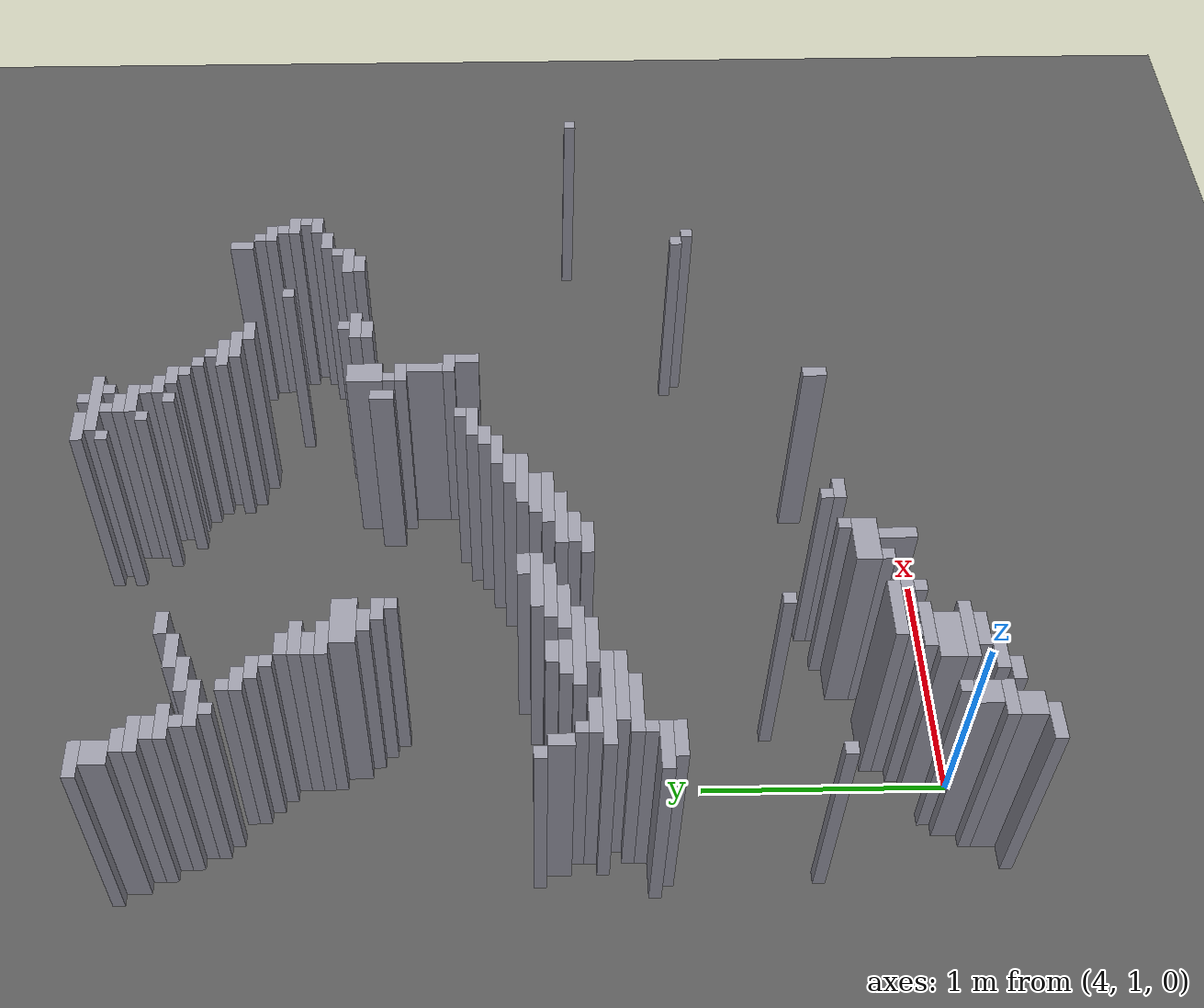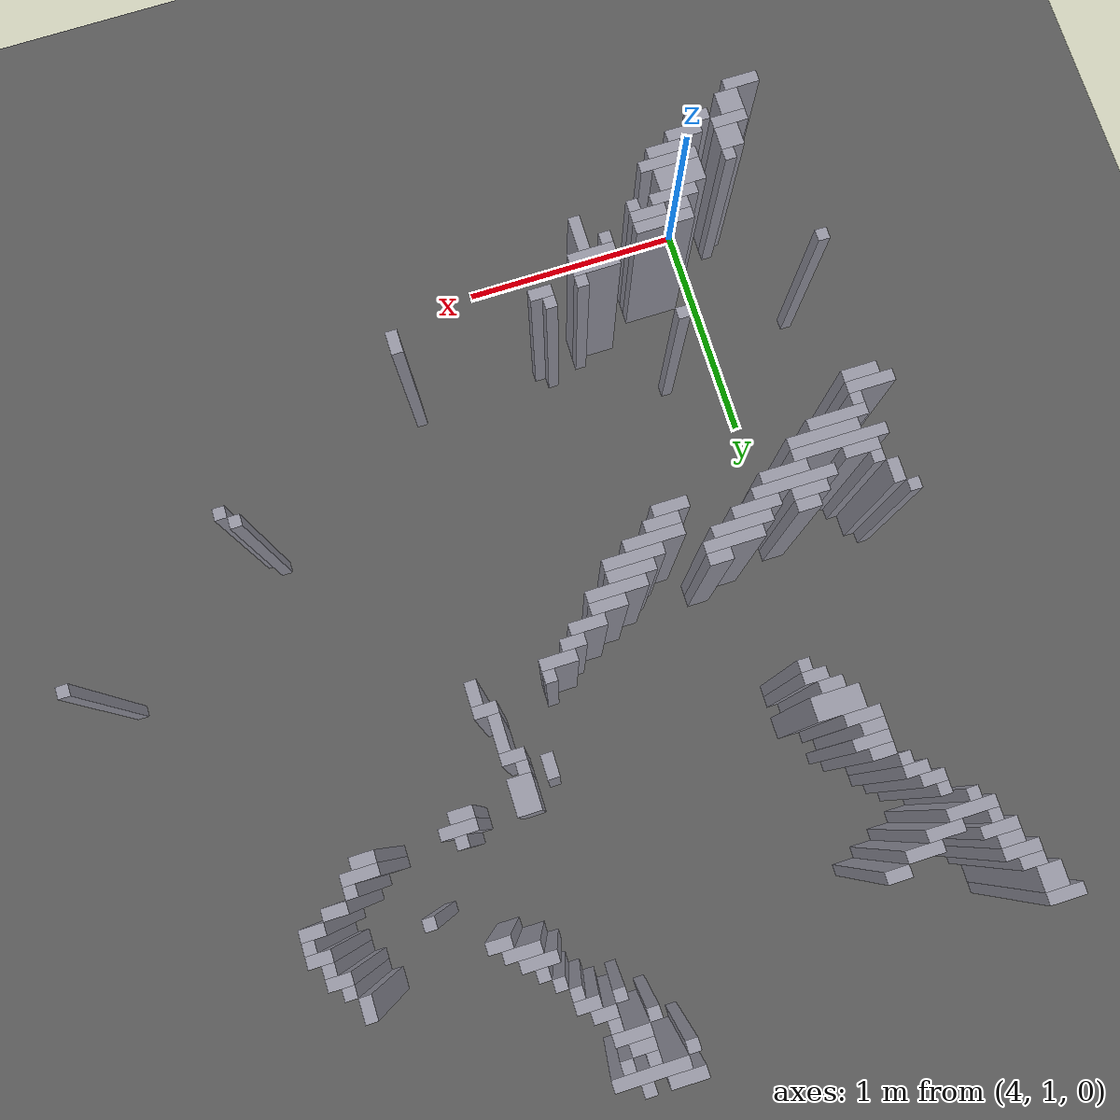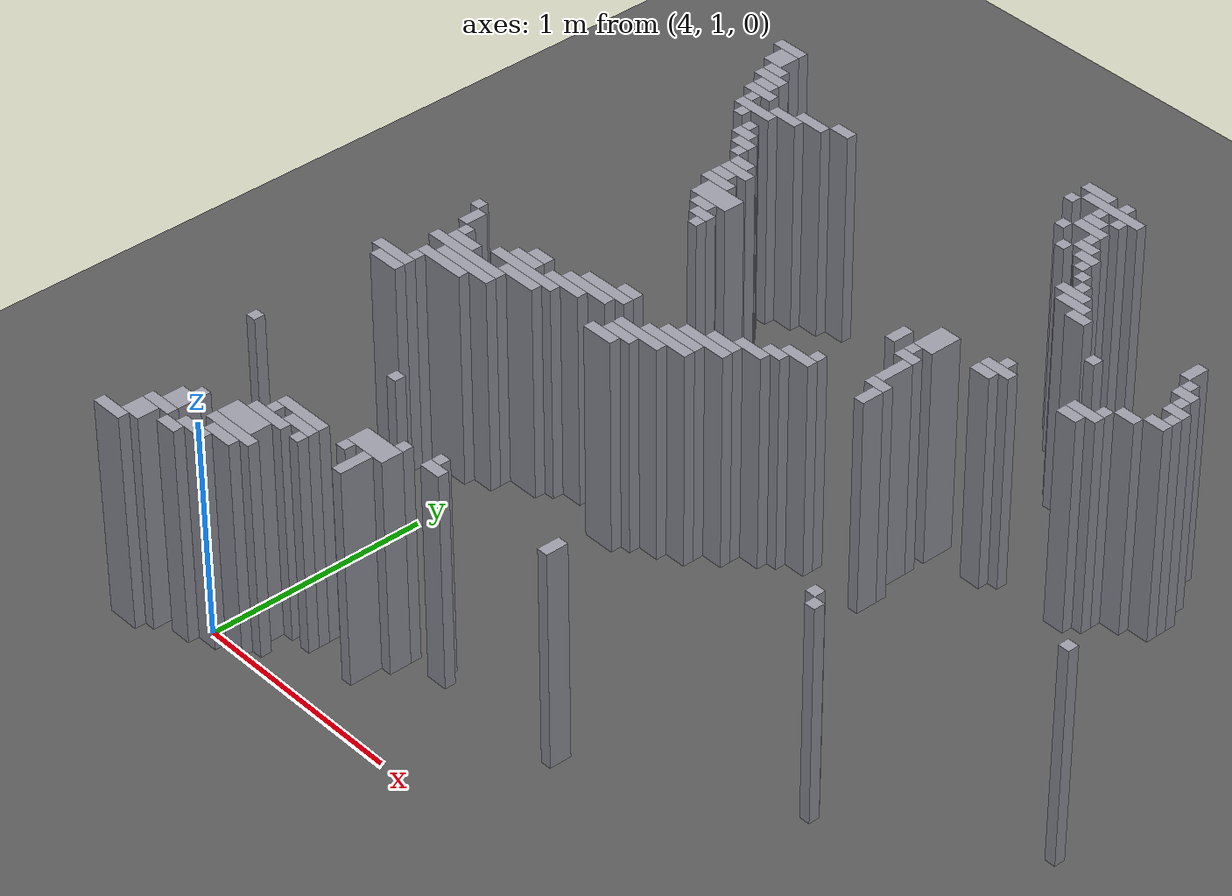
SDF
<sdf version="1.8">
 <world name="dimi">
  <model name="ground">
   <static>true</static>
   <link name="ground_link">
    <collision name="c"><geometry><plane><normal>0 0 1</normal><size>60 60</size></plane></geometry></collision>
    <visual name="v">
     <geometry><plane><normal>0 0 1</normal><size>60 60</size></plane></geometry>
     <material><ambient>0.3 0.3 0.3 1</ambient><diffuse>0.35 0.35 0.35 1</diffuse></material>
    </visual>
   </link>
  </model>
  <model name="walls">
   <static>true</static>
   <link name="wall_736">
    <pose>5.1580 4.5200 0.5000 0 0 0</pose>
    <collision name="c"><geometry><box><size>0.1500 0.0500 1.0000</size></box></geometry></collision>
    <visual name="v">
     <geometry><box><size>0.1500 0.0500 1.0000</size></box></geometry>
     <material><ambient>0.5 0.5 0.55 1</ambient><diffuse>0.6 0.6 0.65 1</diffuse></material>
    </visual>
   </link>
   <link name="wall_737">
    <pose>5.3080 4.5200 0.5000 0 0 0</pose>
    <collision name="c"><geometry><box><size>0.0500 0.0500 1.0000</size></box></geometry></collision>
    <visual name="v">
     <geometry><box><size>0.0500 0.0500 1.0000</size></box></geometry>
     <material><ambient>0.5 0.5 0.55 1</ambient><diffuse>0.6 0.6 0.65 1</diffuse></material>
    </visual>
   </link>
   <link name="wall_744">
    <pose>5.2830 4.4700 0.5000 0 0 0</pose>
    <collision name="c"><geometry><box><size>0.3000 0.0500 1.0000</size></box></geometry></collision>
    <visual name="v">
     <geometry><box><size>0.3000 0.0500 1.0000</size></box></geometry>
     <material><ambient>0.5 0.5 0.55 1</ambient><diffuse>0.6 0.6 0.65 1</diffuse></material>
    </visual>
   </link>
   <link name="wall_755">
    <pose>5.1080 4.4200 0.5000 0 0 0</pose>
    <collision name="c"><geometry><box><size>0.0500 0.0500 1.0000</size></box></geometry></collision>
    <visual name="v">
     <geometry><box><size>0.0500 0.0500 1.0000</size></box></geometry>
     <material><ambient>0.5 0.5 0.55 1</ambient><diffuse>0.6 0.6 0.65 1</diffuse></material>
    </visual>
   </link>
   <link name="wall_756">
    <pose>5.2580 4.4200 0.5000 0 0 0</pose>
    <collision name="c"><geometry><box><size>0.0500 0.0500 1.0000</size></box></geometry></collision>
    <visual name="v">
     <geometry><box><size>0.0500 0.0500 1.0000</size></box></geometry>
     <material><ambient>0.5 0.5 0.55 1</ambient><diffuse>0.6 0.6 0.65 1</diffuse></material>
    </visual>
   </link>
   <link name="wall_757">
    <pose>5.3580 4.4200 0.5000 0 0 0</pose>
    <collision name="c"><geometry><box><size>0.0500 0.0500 1.0000</size></box></geometry></collision>
    <visual name="v">
     <geometry><box><size>0.0500 0.0500 1.0000</size></box></geometry>
     <material><ambient>0.5 0.5 0.55 1</ambient><diffuse>0.6 0.6 0.65 1</diffuse></material>
    </visual>
   </link>
   <link name="wall_766">
    <pose>5.2830 4.3700 0.5000 0 0 0</pose>
    <collision name="c"><geometry><box><size>0.1000 0.0500 1.0000</size></box></geometry></collision>
    <visual name="v">
     <geometry><box><size>0.1000 0.0500 1.0000</size></box></geometry>
     <material><ambient>0.5 0.5 0.55 1</ambient><diffuse>0.6 0.6 0.65 1</diffuse></material>
    </visual>
   </link>
   <link name="wall_775">
    <pose>3.6080 4.3200 0.5000 0 0 0</pose>
    <collision name="c"><geometry><box><size>0.1500 0.0500 1.0000</size></box></geometry></collision>
    <visual name="v">
     <geometry><box><size>0.1500 0.0500 1.0000</size></box></geometry>
     <material><ambient>0.5 0.5 0.55 1</ambient><diffuse>0.6 0.6 0.65 1</diffuse></material>
    </visual>
   </link>
   <link name="wall_776">
    <pose>5.3080 4.3200 0.5000 0 0 0</pose>
    <collision name="c"><geometry><box><size>0.1500 0.0500 1.0000</size></box></geometry></collision>
    <visual name="v">
     <geometry><box><size>0.1500 0.0500 1.0000</size></box></geometry>
     <material><ambient>0.5 0.5 0.55 1</ambient><diffuse>0.6 0.6 0.65 1</diffuse></material>
    </visual>
   </link>
   <link name="wall_784">
    <pose>3.6330 4.2450 0.5000 0 0 0</pose>
    <collision name="c"><geometry><box><size>0.1000 0.1000 1.0000</size></box></geometry></collision>
    <visual name="v">
     <geometry><box><size>0.1000 0.1000 1.0000</size></box></geometry>
     <material><ambient>0.5 0.5 0.55 1</ambient><diffuse>0.6 0.6 0.65 1</diffuse></material>
    </visual>
   </link>
   <link name="wall_785">
    <pose>5.2080 4.2700 0.5000 0 0 0</pose>
    <collision name="c"><geometry><box><size>0.0500 0.0500 1.0000</size></box></geometry></collision>
    <visual name="v">
     <geometry><box><size>0.0500 0.0500 1.0000</size></box></geometry>
     <material><ambient>0.5 0.5 0.55 1</ambient><diffuse>0.6 0.6 0.65 1</diffuse></material>
    </visual>
   </link>
   <link name="wall_786">
    <pose>5.3580 4.2700 0.5000 0 0 0</pose>
    <collision name="c"><geometry><box><size>0.0500 0.0500 1.0000</size></box></geometry></collision>
    <visual name="v">
     <geometry><box><size>0.0500 0.0500 1.0000</size></box></geometry>
     <material><ambient>0.5 0.5 0.55 1</ambient><diffuse>0.6 0.6 0.65 1</diffuse></material>
    </visual>
   </link>
   <link name="wall_795">
    <pose>5.3830 4.2200 0.5000 0 0 0</pose>
    <collision name="c"><geometry><box><size>0.1000 0.0500 1.0000</size></box></geometry></collision>
    <visual name="v">
     <geometry><box><size>0.1000 0.0500 1.0000</size></box></geometry>
     <material><ambient>0.5 0.5 0.55 1</ambient><diffuse>0.6 0.6 0.65 1</diffuse></material>
    </visual>
   </link>
   <link name="wall_801">
    <pose>3.6830 4.1700 0.5000 0 0 0</pose>
    <collision name="c"><geometry><box><size>0.1000 0.0500 1.0000</size></box></geometry></collision>
    <visual name="v">
     <geometry><box><size>0.1000 0.0500 1.0000</size></box></geometry>
     <material><ambient>0.5 0.5 0.55 1</ambient><diffuse>0.6 0.6 0.65 1</diffuse></material>
    </visual>
   </link>
   <link name="wall_802">
    <pose>5.3080 4.1700 0.5000 0 0 0</pose>
    <collision name="c"><geometry><box><size>0.0500 0.0500 1.0000</size></box></geometry></collision>
    <visual name="v">
     <geometry><box><size>0.0500 0.0500 1.0000</size></box></geometry>
     <material><ambient>0.5 0.5 0.55 1</ambient><diffuse>0.6 0.6 0.65 1</diffuse></material>
    </visual>
   </link>
   <link name="wall_803">
    <pose>5.4330 4.1700 0.5000 0 0 0</pose>
    <collision name="c"><geometry><box><size>0.1000 0.0500 1.0000</size></box></geometry></collision>
    <visual name="v">
     <geometry><box><size>0.1000 0.0500 1.0000</size></box></geometry>
     <material><ambient>0.5 0.5 0.55 1</ambient><diffuse>0.6 0.6 0.65 1</diffuse></material>
    </visual>
   </link>
   <link name="wall_812">
    <pose>3.7080 4.1200 0.5000 0 0 0</pose>
    <collision name="c"><geometry><box><size>0.1500 0.0500 1.0000</size></box></geometry></collision>
    <visual name="v">
     <geometry><box><size>0.1500 0.0500 1.0000</size></box></geometry>
     <material><ambient>0.5 0.5 0.55 1</ambient><diffuse>0.6 0.6 0.65 1</diffuse></material>
    </visual>
   </link>
   <link name="wall_813">
    <pose>5.4580 4.1200 0.5000 0 0 0</pose>
    <collision name="c"><geometry><box><size>0.0500 0.0500 1.0000</size></box></geometry></collision>
    <visual name="v">
     <geometry><box><size>0.0500 0.0500 1.0000</size></box></geometry>
     <material><ambient>0.5 0.5 0.55 1</ambient><diffuse>0.6 0.6 0.65 1</diffuse></material>
    </visual>
   </link>
   <link name="wall_824">
    <pose>3.7330 4.0700 0.5000 0 0 0</pose>
    <collision name="c"><geometry><box><size>0.1000 0.0500 1.0000</size></box></geometry></collision>
    <visual name="v">
     <geometry><box><size>0.1000 0.0500 1.0000</size></box></geometry>
     <material><ambient>0.5 0.5 0.55 1</ambient><diffuse>0.6 0.6 0.65 1</diffuse></material>
    </visual>
   </link>
   <link name="wall_825">
    <pose>4.1830 4.0700 0.5000 0 0 0</pose>
    <collision name="c"><geometry><box><size>0.1000 0.0500 1.0000</size></box></geometry></collision>
    <visual name="v">
     <geometry><box><size>0.1000 0.0500 1.0000</size></box></geometry>
     <material><ambient>0.5 0.5 0.55 1</ambient><diffuse>0.6 0.6 0.65 1</diffuse></material>
    </visual>
   </link>
   <link name="wall_826">
    <pose>5.5080 4.0700 0.5000 0 0 0</pose>
    <collision name="c"><geometry><box><size>0.0500 0.0500 1.0000</size></box></geometry></collision>
    <visual name="v">
     <geometry><box><size>0.0500 0.0500 1.0000</size></box></geometry>
     <material><ambient>0.5 0.5 0.55 1</ambient><diffuse>0.6 0.6 0.65 1</diffuse></material>
    </visual>
   </link>
   <link name="wall_834">
    <pose>3.7580 4.0200 0.5000 0 0 0</pose>
    <collision name="c"><geometry><box><size>0.1500 0.0500 1.0000</size></box></geometry></collision>
    <visual name="v">
     <geometry><box><size>0.1500 0.0500 1.0000</size></box></geometry>
     <material><ambient>0.5 0.5 0.55 1</ambient><diffuse>0.6 0.6 0.65 1</diffuse></material>
    </visual>
   </link>
   <link name="wall_835">
    <pose>4.0580 4.0200 0.5000 0 0 0</pose>
    <collision name="c"><geometry><box><size>0.1500 0.0500 1.0000</size></box></geometry></collision>
    <visual name="v">
     <geometry><box><size>0.1500 0.0500 1.0000</size></box></geometry>
     <material><ambient>0.5 0.5 0.55 1</ambient><diffuse>0.6 0.6 0.65 1</diffuse></material>
    </visual>
   </link>
   <link name="wall_836">
    <pose>5.5580 4.0200 0.5000 0 0 0</pose>
    <collision name="c"><geometry><box><size>0.0500 0.0500 1.0000</size></box></geometry></collision>
    <visual name="v">
     <geometry><box><size>0.0500 0.0500 1.0000</size></box></geometry>
     <material><ambient>0.5 0.5 0.55 1</ambient><diffuse>0.6 0.6 0.65 1</diffuse></material>
    </visual>
   </link>
   <link name="wall_847">
    <pose>3.7580 3.9700 0.5000 0 0 0</pose>
    <collision name="c"><geometry><box><size>0.0500 0.0500 1.0000</size></box></geometry></collision>
    <visual name="v">
     <geometry><box><size>0.0500 0.0500 1.0000</size></box></geometry>
     <material><ambient>0.5 0.5 0.55 1</ambient><diffuse>0.6 0.6 0.65 1</diffuse></material>
    </visual>
   </link>
   <link name="wall_848">
    <pose>3.9580 3.9700 0.5000 0 0 0</pose>
    <collision name="c"><geometry><box><size>0.1500 0.0500 1.0000</size></box></geometry></collision>
    <visual name="v">
     <geometry><box><size>0.1500 0.0500 1.0000</size></box></geometry>
     <material><ambient>0.5 0.5 0.55 1</ambient><diffuse>0.6 0.6 0.65 1</diffuse></material>
    </visual>
   </link>
   <link name="wall_849">
    <pose>5.5580 3.9700 0.5000 0 0 0</pose>
    <collision name="c"><geometry><box><size>0.1500 0.0500 1.0000</size></box></geometry></collision>
    <visual name="v">
     <geometry><box><size>0.1500 0.0500 1.0000</size></box></geometry>
     <material><ambient>0.5 0.5 0.55 1</ambient><diffuse>0.6 0.6 0.65 1</diffuse></material>
    </visual>
   </link>
   <link name="wall_850">
    <pose>6.2080 3.9450 0.5000 0 0 0</pose>
    <collision name="c"><geometry><box><size>0.0500 0.1000 1.0000</size></box></geometry></collision>
    <visual name="v">
     <geometry><box><size>0.0500 0.1000 1.0000</size></box></geometry>
     <material><ambient>0.5 0.5 0.55 1</ambient><diffuse>0.6 0.6 0.65 1</diffuse></material>
    </visual>
   </link>
   <link name="wall_859">
    <pose>3.8330 3.9200 0.5000 0 0 0</pose>
    <collision name="c"><geometry><box><size>0.2000 0.0500 1.0000</size></box></geometry></collision>
    <visual name="v">
     <geometry><box><size>0.2000 0.0500 1.0000</size></box></geometry>
     <material><ambient>0.5 0.5 0.55 1</ambient><diffuse>0.6 0.6 0.65 1</diffuse></material>
    </visual>
   </link>
   <link name="wall_860">
    <pose>5.6080 3.9200 0.5000 0 0 0</pose>
    <collision name="c"><geometry><box><size>0.1500 0.0500 1.0000</size></box></geometry></collision>
    <visual name="v">
     <geometry><box><size>0.1500 0.0500 1.0000</size></box></geometry>
     <material><ambient>0.5 0.5 0.55 1</ambient><diffuse>0.6 0.6 0.65 1</diffuse></material>
    </visual>
   </link>
   <link name="wall_867">
    <pose>3.8080 3.8700 0.5000 0 0 0</pose>
    <collision name="c"><geometry><box><size>0.0500 0.0500 1.0000</size></box></geometry></collision>
    <visual name="v">
     <geometry><box><size>0.0500 0.0500 1.0000</size></box></geometry>
     <material><ambient>0.5 0.5 0.55 1</ambient><diffuse>0.6 0.6 0.65 1</diffuse></material>
    </visual>
   </link>
   <link name="wall_868">
    <pose>5.6830 3.8700 0.5000 0 0 0</pose>
    <collision name="c"><geometry><box><size>0.1000 0.0500 1.0000</size></box></geometry></collision>
    <visual name="v">
     <geometry><box><size>0.1000 0.0500 1.0000</size></box></geometry>
     <material><ambient>0.5 0.5 0.55 1</ambient><diffuse>0.6 0.6 0.65 1</diffuse></material>
    </visual>
   </link>
   <link name="wall_869">
    <pose>6.2580 3.8700 0.5000 0 0 0</pose>
    <collision name="c"><geometry><box><size>0.0500 0.0500 1.0000</size></box></geometry></collision>
    <visual name="v">
     <geometry><box><size>0.0500 0.0500 1.0000</size></box></geometry>
     <material><ambient>0.5 0.5 0.55 1</ambient><diffuse>0.6 0.6 0.65 1</diffuse></material>
    </visual>
   </link>
   <link name="wall_875">
    <pose>3.9080 3.8200 0.5000 0 0 0</pose>
    <collision name="c"><geometry><box><size>0.0500 0.0500 1.0000</size></box></geometry></collision>
    <visual name="v">
     <geometry><box><size>0.0500 0.0500 1.0000</size></box></geometry>
     <material><ambient>0.5 0.5 0.55 1</ambient><diffuse>0.6 0.6 0.65 1</diffuse></material>
    </visual>
   </link>
   <link name="wall_876">
    <pose>6.2830 3.8200 0.5000 0 0 0</pose>
    <collision name="c"><geometry><box><size>0.1000 0.0500 1.0000</size></box></geometry></collision>
    <visual name="v">
     <geometry><box><size>0.1000 0.0500 1.0000</size></box></geometry>
     <material><ambient>0.5 0.5 0.55 1</ambient><diffuse>0.6 0.6 0.65 1</diffuse></material>
    </visual>
   </link>
   <link name="wall_885">
    <pose>3.9330 3.7700 0.5000 0 0 0</pose>
    <collision name="c"><geometry><box><size>0.1000 0.0500 1.0000</size></box></geometry></collision>
    <visual name="v">
     <geometry><box><size>0.1000 0.0500 1.0000</size></box></geometry>
     <material><ambient>0.5 0.5 0.55 1</ambient><diffuse>0.6 0.6 0.65 1</diffuse></material>
    </visual>
   </link>
   <link name="wall_886">
    <pose>6.3080 3.7700 0.5000 0 0 0</pose>
    <collision name="c"><geometry><box><size>0.0500 0.0500 1.0000</size></box></geometry></collision>
    <visual name="v">
     <geometry><box><size>0.0500 0.0500 1.0000</size></box></geometry>
     <material><ambient>0.5 0.5 0.55 1</ambient><diffuse>0.6 0.6 0.65 1</diffuse></material>
    </visual>
   </link>
   <link name="wall_890">
    <pose>3.9830 3.7200 0.5000 0 0 0</pose>
    <collision name="c"><geometry><box><size>0.1000 0.0500 1.0000</size></box></geometry></collision>
    <visual name="v">
     <geometry><box><size>0.1000 0.0500 1.0000</size></box></geometry>
     <material><ambient>0.5 0.5 0.55 1</ambient><diffuse>0.6 0.6 0.65 1</diffuse></material>
    </visual>
   </link>
   <link name="wall_891">
    <pose>5.9080 3.7200 0.5000 0 0 0</pose>
    <collision name="c"><geometry><box><size>0.0500 0.0500 1.0000</size></box></geometry></collision>
    <visual name="v">
     <geometry><box><size>0.0500 0.0500 1.0000</size></box></geometry>
     <material><ambient>0.5 0.5 0.55 1</ambient><diffuse>0.6 0.6 0.65 1</diffuse></material>
    </visual>
   </link>
   <link name="wall_892">
    <pose>6.3330 3.7200 0.5000 0 0 0</pose>
    <collision name="c"><geometry><box><size>0.1000 0.0500 1.0000</size></box></geometry></collision>
    <visual name="v">
     <geometry><box><size>0.1000 0.0500 1.0000</size></box></geometry>
     <material><ambient>0.5 0.5 0.55 1</ambient><diffuse>0.6 0.6 0.65 1</diffuse></material>
    </visual>
   </link>
   <link name="wall_901">
    <pose>4.0080 3.6700 0.5000 0 0 0</pose>
    <collision name="c"><geometry><box><size>0.0500 0.0500 1.0000</size></box></geometry></collision>
    <visual name="v">
     <geometry><box><size>0.0500 0.0500 1.0000</size></box></geometry>
     <material><ambient>0.5 0.5 0.55 1</ambient><diffuse>0.6 0.6 0.65 1</diffuse></material>
    </visual>
   </link>
   <link name="wall_902">
    <pose>6.3580 3.6700 0.5000 0 0 0</pose>
    <collision name="c"><geometry><box><size>0.0500 0.0500 1.0000</size></box></geometry></collision>
    <visual name="v">
     <geometry><box><size>0.0500 0.0500 1.0000</size></box></geometry>
     <material><ambient>0.5 0.5 0.55 1</ambient><diffuse>0.6 0.6 0.65 1</diffuse></material>
    </visual>
   </link>
   <link name="wall_908">
    <pose>4.0830 3.6200 0.5000 0 0 0</pose>
    <collision name="c"><geometry><box><size>0.1000 0.0500 1.0000</size></box></geometry></collision>
    <visual name="v">
     <geometry><box><size>0.1000 0.0500 1.0000</size></box></geometry>
     <material><ambient>0.5 0.5 0.55 1</ambient><diffuse>0.6 0.6 0.65 1</diffuse></material>
    </visual>
   </link>
   <link name="wall_909">
    <pose>6.3330 3.6200 0.5000 0 0 0</pose>
    <collision name="c"><geometry><box><size>0.1000 0.0500 1.0000</size></box></geometry></collision>
    <visual name="v">
     <geometry><box><size>0.1000 0.0500 1.0000</size></box></geometry>
     <material><ambient>0.5 0.5 0.55 1</ambient><diffuse>0.6 0.6 0.65 1</diffuse></material>
    </visual>
   </link>
   <link name="wall_917">
    <pose>4.1080 3.5700 0.5000 0 0 0</pose>
    <collision name="c"><geometry><box><size>0.1500 0.0500 1.0000</size></box></geometry></collision>
    <visual name="v">
     <geometry><box><size>0.1500 0.0500 1.0000</size></box></geometry>
     <material><ambient>0.5 0.5 0.55 1</ambient><diffuse>0.6 0.6 0.65 1</diffuse></material>
    </visual>
   </link>
   <link name="wall_918">
    <pose>6.2330 3.5700 0.5000 0 0 0</pose>
    <collision name="c"><geometry><box><size>0.1000 0.0500 1.0000</size></box></geometry></collision>
    <visual name="v">
     <geometry><box><size>0.1000 0.0500 1.0000</size></box></geometry>
     <material><ambient>0.5 0.5 0.55 1</ambient><diffuse>0.6 0.6 0.65 1</diffuse></material>
    </visual>
   </link>
   <link name="wall_925">
    <pose>4.0830 3.5200 0.5000 0 0 0</pose>
    <collision name="c"><geometry><box><size>0.1000 0.0500 1.0000</size></box></geometry></collision>
    <visual name="v">
     <geometry><box><size>0.1000 0.0500 1.0000</size></box></geometry>
     <material><ambient>0.5 0.5 0.55 1</ambient><diffuse>0.6 0.6 0.65 1</diffuse></material>
    </visual>
   </link>
   <link name="wall_926">
    <pose>6.1580 3.5200 0.5000 0 0 0</pose>
    <collision name="c"><geometry><box><size>0.0500 0.0500 1.0000</size></box></geometry></collision>
    <visual name="v">
     <geometry><box><size>0.0500 0.0500 1.0000</size></box></geometry>
     <material><ambient>0.5 0.5 0.55 1</ambient><diffuse>0.6 0.6 0.65 1</diffuse></material>
    </visual>
   </link>
   <link name="wall_933">
    <pose>4.1080 3.4700 0.5000 0 0 0</pose>
    <collision name="c"><geometry><box><size>0.1500 0.0500 1.0000</size></box></geometry></collision>
    <visual name="v">
     <geometry><box><size>0.1500 0.0500 1.0000</size></box></geometry>
     <material><ambient>0.5 0.5 0.55 1</ambient><diffuse>0.6 0.6 0.65 1</diffuse></material>
    </visual>
   </link>
   <link name="wall_934">
    <pose>5.7080 3.4700 0.5000 0 0 0</pose>
    <collision name="c"><geometry><box><size>0.0500 0.0500 1.0000</size></box></geometry></collision>
    <visual name="v">
     <geometry><box><size>0.0500 0.0500 1.0000</size></box></geometry>
     <material><ambient>0.5 0.5 0.55 1</ambient><diffuse>0.6 0.6 0.65 1</diffuse></material>
    </visual>
   </link>
   <link name="wall_935">
    <pose>6.1080 3.4700 0.5000 0 0 0</pose>
    <collision name="c"><geometry><box><size>0.1500 0.0500 1.0000</size></box></geometry></collision>
    <visual name="v">
     <geometry><box><size>0.1500 0.0500 1.0000</size></box></geometry>
     <material><ambient>0.5 0.5 0.55 1</ambient><diffuse>0.6 0.6 0.65 1</diffuse></material>
    </visual>
   </link>
   <link name="wall_940">
    <pose>4.1830 3.3950 0.5000 0 0 0</pose>
    <collision name="c"><geometry><box><size>0.2000 0.1000 1.0000</size></box></geometry></collision>
    <visual name="v">
     <geometry><box><size>0.2000 0.1000 1.0000</size></box></geometry>
     <material><ambient>0.5 0.5 0.55 1</ambient><diffuse>0.6 0.6 0.65 1</diffuse></material>
    </visual>
   </link>
   <link name="wall_941">
    <pose>5.4330 3.3700 0.5000 0 0 0</pose>
    <collision name="c"><geometry><box><size>0.1000 0.1500 1.0000</size></box></geometry></collision>
    <visual name="v">
     <geometry><box><size>0.1000 0.1500 1.0000</size></box></geometry>
     <material><ambient>0.5 0.5 0.55 1</ambient><diffuse>0.6 0.6 0.65 1</diffuse></material>
    </visual>
   </link>
   <link name="wall_942">
    <pose>5.7080 3.4200 0.5000 0 0 0</pose>
    <collision name="c"><geometry><box><size>0.1500 0.0500 1.0000</size></box></geometry></collision>
    <visual name="v">
     <geometry><box><size>0.1500 0.0500 1.0000</size></box></geometry>
     <material><ambient>0.5 0.5 0.55 1</ambient><diffuse>0.6 0.6 0.65 1</diffuse></material>
    </visual>
   </link>
   <link name="wall_943">
    <pose>6.0830 3.4200 0.5000 0 0 0</pose>
    <collision name="c"><geometry><box><size>0.1000 0.0500 1.0000</size></box></geometry></collision>
    <visual name="v">
     <geometry><box><size>0.1000 0.0500 1.0000</size></box></geometry>
     <material><ambient>0.5 0.5 0.55 1</ambient><diffuse>0.6 0.6 0.65 1</diffuse></material>
    </visual>
   </link>
   <link name="wall_951">
    <pose>5.6830 3.3700 0.5000 0 0 0</pose>
    <collision name="c"><geometry><box><size>0.1000 0.0500 1.0000</size></box></geometry></collision>
    <visual name="v">
     <geometry><box><size>0.1000 0.0500 1.0000</size></box></geometry>
     <material><ambient>0.5 0.5 0.55 1</ambient><diffuse>0.6 0.6 0.65 1</diffuse></material>
    </visual>
   </link>
   <link name="wall_960">
    <pose>4.1830 3.3200 0.5000 0 0 0</pose>
    <collision name="c"><geometry><box><size>0.1000 0.0500 1.0000</size></box></geometry></collision>
    <visual name="v">
     <geometry><box><size>0.1000 0.0500 1.0000</size></box></geometry>
     <material><ambient>0.5 0.5 0.55 1</ambient><diffuse>0.6 0.6 0.65 1</diffuse></material>
    </visual>
   </link>
   <link name="wall_961">
    <pose>5.3080 3.2950 0.5000 0 0 0</pose>
    <collision name="c"><geometry><box><size>0.0500 0.1000 1.0000</size></box></geometry></collision>
    <visual name="v">
     <geometry><box><size>0.0500 0.1000 1.0000</size></box></geometry>
     <material><ambient>0.5 0.5 0.55 1</ambient><diffuse>0.6 0.6 0.65 1</diffuse></material>
    </visual>
   </link>
   <link name="wall_967">
    <pose>4.2330 3.2700 0.5000 0 0 0</pose>
    <collision name="c"><geometry><box><size>0.1000 0.0500 1.0000</size></box></geometry></collision>
    <visual name="v">
     <geometry><box><size>0.1000 0.0500 1.0000</size></box></geometry>
     <material><ambient>0.5 0.5 0.55 1</ambient><diffuse>0.6 0.6 0.65 1</diffuse></material>
    </visual>
   </link>
   <link name="wall_968">
    <pose>5.4080 3.2700 0.5000 0 0 0</pose>
    <collision name="c"><geometry><box><size>0.0500 0.0500 1.0000</size></box></geometry></collision>
    <visual name="v">
     <geometry><box><size>0.0500 0.0500 1.0000</size></box></geometry>
     <material><ambient>0.5 0.5 0.55 1</ambient><diffuse>0.6 0.6 0.65 1</diffuse></material>
    </visual>
   </link>
   <link name="wall_975">
    <pose>4.2580 3.2200 0.5000 0 0 0</pose>
    <collision name="c"><geometry><box><size>0.0500 0.0500 1.0000</size></box></geometry></collision>
    <visual name="v">
     <geometry><box><size>0.0500 0.0500 1.0000</size></box></geometry>
     <material><ambient>0.5 0.5 0.55 1</ambient><diffuse>0.6 0.6 0.65 1</diffuse></material>
    </visual>
   </link>
   <link name="wall_976">
    <pose>5.4330 3.2200 0.5000 0 0 0</pose>
    <collision name="c"><geometry><box><size>0.1000 0.0500 1.0000</size></box></geometry></collision>
    <visual name="v">
     <geometry><box><size>0.1000 0.0500 1.0000</size></box></geometry>
     <material><ambient>0.5 0.5 0.55 1</ambient><diffuse>0.6 0.6 0.65 1</diffuse></material>
    </visual>
   </link>
   <link name="wall_982">
    <pose>5.4580 3.1200 0.5000 0 0 0</pose>
    <collision name="c"><geometry><box><size>0.0500 0.1500 1.0000</size></box></geometry></collision>
    <visual name="v">
     <geometry><box><size>0.0500 0.1500 1.0000</size></box></geometry>
     <material><ambient>0.5 0.5 0.55 1</ambient><diffuse>0.6 0.6 0.65 1</diffuse></material>
    </visual>
   </link>
   <link name="wall_996">
    <pose>5.4830 3.0200 0.5000 0 0 0</pose>
    <collision name="c"><geometry><box><size>0.1000 0.0500 1.0000</size></box></geometry></collision>
    <visual name="v">
     <geometry><box><size>0.1000 0.0500 1.0000</size></box></geometry>
     <material><ambient>0.5 0.5 0.55 1</ambient><diffuse>0.6 0.6 0.65 1</diffuse></material>
    </visual>
   </link>
   <link name="wall_999">
    <pose>5.2080 2.9700 0.5000 0 0 0</pose>
    <collision name="c"><geometry><box><size>0.0500 0.0500 1.0000</size></box></geometry></collision>
    <visual name="v">
     <geometry><box><size>0.0500 0.0500 1.0000</size></box></geometry>
     <material><ambient>0.5 0.5 0.55 1</ambient><diffuse>0.6 0.6 0.65 1</diffuse></material>
    </visual>
   </link>
   <link name="wall_1000">
    <pose>5.5080 2.9450 0.5000 0 0 0</pose>
    <collision name="c"><geometry><box><size>0.0500 0.1000 1.0000</size></box></geometry></collision>
    <visual name="v">
     <geometry><box><size>0.0500 0.1000 1.0000</size></box></geometry>
     <material><ambient>0.5 0.5 0.55 1</ambient><diffuse>0.6 0.6 0.65 1</diffuse></material>
    </visual>
   </link>
   <link name="wall_1005">
    <pose>5.1580 2.9200 0.5000 0 0 0</pose>
    <collision name="c"><geometry><box><size>0.1500 0.0500 1.0000</size></box></geometry></collision>
    <visual name="v">
     <geometry><box><size>0.1500 0.0500 1.0000</size></box></geometry>
     <material><ambient>0.5 0.5 0.55 1</ambient><diffuse>0.6 0.6 0.65 1</diffuse></material>
    </visual>
   </link>
   <link name="wall_1009">
    <pose>5.0830 2.8700 0.5000 0 0 0</pose>
    <collision name="c"><geometry><box><size>0.1000 0.0500 1.0000</size></box></geometry></collision>
    <visual name="v">
     <geometry><box><size>0.1000 0.0500 1.0000</size></box></geometry>
     <material><ambient>0.5 0.5 0.55 1</ambient><diffuse>0.6 0.6 0.65 1</diffuse></material>
    </visual>
   </link>
   <link name="wall_1013">
    <pose>5.0080 2.8200 0.5000 0 0 0</pose>
    <collision name="c"><geometry><box><size>0.1500 0.0500 1.0000</size></box></geometry></collision>
    <visual name="v">
     <geometry><box><size>0.1500 0.0500 1.0000</size></box></geometry>
     <material><ambient>0.5 0.5 0.55 1</ambient><diffuse>0.6 0.6 0.65 1</diffuse></material>
    </visual>
   </link>
   <link name="wall_1017">
    <pose>4.9080 2.7700 0.5000 0 0 0</pose>
    <collision name="c"><geometry><box><size>0.1500 0.0500 1.0000</size></box></geometry></collision>
    <visual name="v">
     <geometry><box><size>0.1500 0.0500 1.0000</size></box></geometry>
     <material><ambient>0.5 0.5 0.55 1</ambient><diffuse>0.6 0.6 0.65 1</diffuse></material>
    </visual>
   </link>
   <link name="wall_1023">
    <pose>4.4330 2.7200 0.5000 0 0 0</pose>
    <collision name="c"><geometry><box><size>0.1000 0.0500 1.0000</size></box></geometry></collision>
    <visual name="v">
     <geometry><box><size>0.1000 0.0500 1.0000</size></box></geometry>
     <material><ambient>0.5 0.5 0.55 1</ambient><diffuse>0.6 0.6 0.65 1</diffuse></material>
    </visual>
   </link>
   <link name="wall_1024">
    <pose>4.8580 2.7200 0.5000 0 0 0</pose>
    <collision name="c"><geometry><box><size>0.2500 0.0500 1.0000</size></box></geometry></collision>
    <visual name="v">
     <geometry><box><size>0.2500 0.0500 1.0000</size></box></geometry>
     <material><ambient>0.5 0.5 0.55 1</ambient><diffuse>0.6 0.6 0.65 1</diffuse></material>
    </visual>
   </link>
   <link name="wall_1027">
    <pose>3.6080 2.6700 0.5000 0 0 0</pose>
    <collision name="c"><geometry><box><size>0.0500 0.0500 1.0000</size></box></geometry></collision>
    <visual name="v">
     <geometry><box><size>0.0500 0.0500 1.0000</size></box></geometry>
     <material><ambient>0.5 0.5 0.55 1</ambient><diffuse>0.6 0.6 0.65 1</diffuse></material>
    </visual>
   </link>
   <link name="wall_1028">
    <pose>4.3580 2.6700 0.5000 0 0 0</pose>
    <collision name="c"><geometry><box><size>0.2500 0.0500 1.0000</size></box></geometry></collision>
    <visual name="v">
     <geometry><box><size>0.2500 0.0500 1.0000</size></box></geometry>
     <material><ambient>0.5 0.5 0.55 1</ambient><diffuse>0.6 0.6 0.65 1</diffuse></material>
    </visual>
   </link>
   <link name="wall_1029">
    <pose>4.7830 2.6700 0.5000 0 0 0</pose>
    <collision name="c"><geometry><box><size>0.2000 0.0500 1.0000</size></box></geometry></collision>
    <visual name="v">
     <geometry><box><size>0.2000 0.0500 1.0000</size></box></geometry>
     <material><ambient>0.5 0.5 0.55 1</ambient><diffuse>0.6 0.6 0.65 1</diffuse></material>
    </visual>
   </link>
   <link name="wall_1034">
    <pose>3.6580 2.5950 0.5000 0 0 0</pose>
    <collision name="c"><geometry><box><size>0.0500 0.1000 1.0000</size></box></geometry></collision>
    <visual name="v">
     <geometry><box><size>0.0500 0.1000 1.0000</size></box></geometry>
     <material><ambient>0.5 0.5 0.55 1</ambient><diffuse>0.6 0.6 0.65 1</diffuse></material>
    </visual>
   </link>
   <link name="wall_1035">
    <pose>4.0330 2.6200 0.5000 0 0 0</pose>
    <collision name="c"><geometry><box><size>0.1000 0.0500 1.0000</size></box></geometry></collision>
    <visual name="v">
     <geometry><box><size>0.1000 0.0500 1.0000</size></box></geometry>
     <material><ambient>0.5 0.5 0.55 1</ambient><diffuse>0.6 0.6 0.65 1</diffuse></material>
    </visual>
   </link>
   <link name="wall_1036">
    <pose>4.3080 2.6200 0.5000 0 0 0</pose>
    <collision name="c"><geometry><box><size>0.2500 0.0500 1.0000</size></box></geometry></collision>
    <visual name="v">
     <geometry><box><size>0.2500 0.0500 1.0000</size></box></geometry>
     <material><ambient>0.5 0.5 0.55 1</ambient><diffuse>0.6 0.6 0.65 1</diffuse></material>
    </visual>
   </link>
   <link name="wall_1037">
    <pose>4.7580 2.6200 0.5000 0 0 0</pose>
    <collision name="c"><geometry><box><size>0.2500 0.0500 1.0000</size></box></geometry></collision>
    <visual name="v">
     <geometry><box><size>0.2500 0.0500 1.0000</size></box></geometry>
     <material><ambient>0.5 0.5 0.55 1</ambient><diffuse>0.6 0.6 0.65 1</diffuse></material>
    </visual>
   </link>
   <link name="wall_1041">
    <pose>4.0080 2.5700 0.5000 0 0 0</pose>
    <collision name="c"><geometry><box><size>0.1500 0.0500 1.0000</size></box></geometry></collision>
    <visual name="v">
     <geometry><box><size>0.1500 0.0500 1.0000</size></box></geometry>
     <material><ambient>0.5 0.5 0.55 1</ambient><diffuse>0.6 0.6 0.65 1</diffuse></material>
    </visual>
   </link>
   <link name="wall_1042">
    <pose>4.2330 2.5700 0.5000 0 0 0</pose>
    <collision name="c"><geometry><box><size>0.2000 0.0500 1.0000</size></box></geometry></collision>
    <visual name="v">
     <geometry><box><size>0.2000 0.0500 1.0000</size></box></geometry>
     <material><ambient>0.5 0.5 0.55 1</ambient><diffuse>0.6 0.6 0.65 1</diffuse></material>
    </visual>
   </link>
   <link name="wall_1043">
    <pose>4.6580 2.5700 0.5000 0 0 0</pose>
    <collision name="c"><geometry><box><size>0.2500 0.0500 1.0000</size></box></geometry></collision>
    <visual name="v">
     <geometry><box><size>0.2500 0.0500 1.0000</size></box></geometry>
     <material><ambient>0.5 0.5 0.55 1</ambient><diffuse>0.6 0.6 0.65 1</diffuse></material>
    </visual>
   </link>
   <link name="wall_1049">
    <pose>3.7080 2.5200 0.5000 0 0 0</pose>
    <collision name="c"><geometry><box><size>0.0500 0.0500 1.0000</size></box></geometry></collision>
    <visual name="v">
     <geometry><box><size>0.0500 0.0500 1.0000</size></box></geometry>
     <material><ambient>0.5 0.5 0.55 1</ambient><diffuse>0.6 0.6 0.65 1</diffuse></material>
    </visual>
   </link>
   <link name="wall_1050">
    <pose>4.0580 2.5200 0.5000 0 0 0</pose>
    <collision name="c"><geometry><box><size>0.3500 0.0500 1.0000</size></box></geometry></collision>
    <visual name="v">
     <geometry><box><size>0.3500 0.0500 1.0000</size></box></geometry>
     <material><ambient>0.5 0.5 0.55 1</ambient><diffuse>0.6 0.6 0.65 1</diffuse></material>
    </visual>
   </link>
   <link name="wall_1051">
    <pose>4.6080 2.5200 0.5000 0 0 0</pose>
    <collision name="c"><geometry><box><size>0.1500 0.0500 1.0000</size></box></geometry></collision>
    <visual name="v">
     <geometry><box><size>0.1500 0.0500 1.0000</size></box></geometry>
     <material><ambient>0.5 0.5 0.55 1</ambient><diffuse>0.6 0.6 0.65 1</diffuse></material>
    </visual>
   </link>
   <link name="wall_1056">
    <pose>3.7580 2.4700 0.5000 0 0 0</pose>
    <collision name="c"><geometry><box><size>0.1500 0.0500 1.0000</size></box></geometry></collision>
    <visual name="v">
     <geometry><box><size>0.1500 0.0500 1.0000</size></box></geometry>
     <material><ambient>0.5 0.5 0.55 1</ambient><diffuse>0.6 0.6 0.65 1</diffuse></material>
    </visual>
   </link>
   <link name="wall_1057">
    <pose>4.0830 2.4700 0.5000 0 0 0</pose>
    <collision name="c"><geometry><box><size>0.2000 0.0500 1.0000</size></box></geometry></collision>
    <visual name="v">
     <geometry><box><size>0.2000 0.0500 1.0000</size></box></geometry>
     <material><ambient>0.5 0.5 0.55 1</ambient><diffuse>0.6 0.6 0.65 1</diffuse></material>
    </visual>
   </link>
   <link name="wall_1058">
    <pose>4.5580 2.4700 0.5000 0 0 0</pose>
    <collision name="c"><geometry><box><size>0.1500 0.0500 1.0000</size></box></geometry></collision>
    <visual name="v">
     <geometry><box><size>0.1500 0.0500 1.0000</size></box></geometry>
     <material><ambient>0.5 0.5 0.55 1</ambient><diffuse>0.6 0.6 0.65 1</diffuse></material>
    </visual>
   </link>
   <link name="wall_1059">
    <pose>7.0080 2.4700 0.5000 0 0 0</pose>
    <collision name="c"><geometry><box><size>0.0500 0.0500 1.0000</size></box></geometry></collision>
    <visual name="v">
     <geometry><box><size>0.0500 0.0500 1.0000</size></box></geometry>
     <material><ambient>0.5 0.5 0.55 1</ambient><diffuse>0.6 0.6 0.65 1</diffuse></material>
    </visual>
   </link>
   <link name="wall_1064">
    <pose>3.8330 2.4200 0.5000 0 0 0</pose>
    <collision name="c"><geometry><box><size>0.4000 0.0500 1.0000</size></box></geometry></collision>
    <visual name="v">
     <geometry><box><size>0.4000 0.0500 1.0000</size></box></geometry>
     <material><ambient>0.5 0.5 0.55 1</ambient><diffuse>0.6 0.6 0.65 1</diffuse></material>
    </visual>
   </link>
   <link name="wall_1068">
    <pose>3.8830 2.3700 0.5000 0 0 0</pose>
    <collision name="c"><geometry><box><size>0.3000 0.0500 1.0000</size></box></geometry></collision>
    <visual name="v">
     <geometry><box><size>0.3000 0.0500 1.0000</size></box></geometry>
     <material><ambient>0.5 0.5 0.55 1</ambient><diffuse>0.6 0.6 0.65 1</diffuse></material>
    </visual>
   </link>
   <link name="wall_1073">
    <pose>3.8080 2.3200 0.5000 0 0 0</pose>
    <collision name="c"><geometry><box><size>0.2500 0.0500 1.0000</size></box></geometry></collision>
    <visual name="v">
     <geometry><box><size>0.2500 0.0500 1.0000</size></box></geometry>
     <material><ambient>0.5 0.5 0.55 1</ambient><diffuse>0.6 0.6 0.65 1</diffuse></material>
    </visual>
   </link>
   <link name="wall_1079">
    <pose>3.7080 2.2700 0.5000 0 0 0</pose>
    <collision name="c"><geometry><box><size>0.0500 0.0500 1.0000</size></box></geometry></collision>
    <visual name="v">
     <geometry><box><size>0.0500 0.0500 1.0000</size></box></geometry>
     <material><ambient>0.5 0.5 0.55 1</ambient><diffuse>0.6 0.6 0.65 1</diffuse></material>
    </visual>
   </link>
   <link name="wall_1084">
    <pose>3.6330 2.2200 0.5000 0 0 0</pose>
    <collision name="c"><geometry><box><size>0.2000 0.0500 1.0000</size></box></geometry></collision>
    <visual name="v">
     <geometry><box><size>0.2000 0.0500 1.0000</size></box></geometry>
     <material><ambient>0.5 0.5 0.55 1</ambient><diffuse>0.6 0.6 0.65 1</diffuse></material>
    </visual>
   </link>
   <link name="wall_1091">
    <pose>3.6580 2.1700 0.5000 0 0 0</pose>
    <collision name="c"><geometry><box><size>0.1500 0.0500 1.0000</size></box></geometry></collision>
    <visual name="v">
     <geometry><box><size>0.1500 0.0500 1.0000</size></box></geometry>
     <material><ambient>0.5 0.5 0.55 1</ambient><diffuse>0.6 0.6 0.65 1</diffuse></material>
    </visual>
   </link>
   <link name="wall_1104">
    <pose>6.2080 2.0200 0.5000 0 0 0</pose>
    <collision name="c"><geometry><box><size>0.0500 0.0500 1.0000</size></box></geometry></collision>
    <visual name="v">
     <geometry><box><size>0.0500 0.0500 1.0000</size></box></geometry>
     <material><ambient>0.5 0.5 0.55 1</ambient><diffuse>0.6 0.6 0.65 1</diffuse></material>
    </visual>
   </link>
   <link name="wall_1109">
    <pose>6.2580 1.9700 0.5000 0 0 0</pose>
    <collision name="c"><geometry><box><size>0.0500 0.0500 1.0000</size></box></geometry></collision>
    <visual name="v">
     <geometry><box><size>0.0500 0.0500 1.0000</size></box></geometry>
     <material><ambient>0.5 0.5 0.55 1</ambient><diffuse>0.6 0.6 0.65 1</diffuse></material>
    </visual>
   </link>
   <link name="wall_1133">
    <pose>4.2580 1.7200 0.5000 0 0 0</pose>
    <collision name="c"><geometry><box><size>0.0500 0.0500 1.0000</size></box></geometry></collision>
    <visual name="v">
     <geometry><box><size>0.0500 0.0500 1.0000</size></box></geometry>
     <material><ambient>0.5 0.5 0.55 1</ambient><diffuse>0.6 0.6 0.65 1</diffuse></material>
    </visual>
   </link>
   <link name="wall_1145">
    <pose>3.6080 1.5700 0.5000 0 0 0</pose>
    <collision name="c"><geometry><box><size>0.0500 0.0500 1.0000</size></box></geometry></collision>
    <visual name="v">
     <geometry><box><size>0.0500 0.0500 1.0000</size></box></geometry>
     <material><ambient>0.5 0.5 0.55 1</ambient><diffuse>0.6 0.6 0.65 1</diffuse></material>
    </visual>
   </link>
   <link name="wall_1148">
    <pose>4.7580 1.5200 0.5000 0 0 0</pose>
    <collision name="c"><geometry><box><size>0.0500 0.0500 1.0000</size></box></geometry></collision>
    <visual name="v">
     <geometry><box><size>0.0500 0.0500 1.0000</size></box></geometry>
     <material><ambient>0.5 0.5 0.55 1</ambient><diffuse>0.6 0.6 0.65 1</diffuse></material>
    </visual>
   </link>
   <link name="wall_1149">
    <pose>5.4080 1.4950 0.5000 0 0 0</pose>
    <collision name="c"><geometry><box><size>0.0500 0.1000 1.0000</size></box></geometry></collision>
    <visual name="v">
     <geometry><box><size>0.0500 0.1000 1.0000</size></box></geometry>
     <material><ambient>0.5 0.5 0.55 1</ambient><diffuse>0.6 0.6 0.65 1</diffuse></material>
    </visual>
   </link>
   <link name="wall_1153">
    <pose>4.6080 1.4700 0.5000 0 0 0</pose>
    <collision name="c"><geometry><box><size>0.0500 0.0500 1.0000</size></box></geometry></collision>
    <visual name="v">
     <geometry><box><size>0.0500 0.0500 1.0000</size></box></geometry>
     <material><ambient>0.5 0.5 0.55 1</ambient><diffuse>0.6 0.6 0.65 1</diffuse></material>
    </visual>
   </link>
   <link name="wall_1154">
    <pose>4.7830 1.4700 0.5000 0 0 0</pose>
    <collision name="c"><geometry><box><size>0.1000 0.0500 1.0000</size></box></geometry></collision>
    <visual name="v">
     <geometry><box><size>0.1000 0.0500 1.0000</size></box></geometry>
     <material><ambient>0.5 0.5 0.55 1</ambient><diffuse>0.6 0.6 0.65 1</diffuse></material>
    </visual>
   </link>
   <link name="wall_1158">
    <pose>4.5330 1.3950 0.5000 0 0 0</pose>
    <collision name="c"><geometry><box><size>0.2000 0.1000 1.0000</size></box></geometry></collision>
    <visual name="v">
     <geometry><box><size>0.2000 0.1000 1.0000</size></box></geometry>
     <material><ambient>0.5 0.5 0.55 1</ambient><diffuse>0.6 0.6 0.65 1</diffuse></material>
    </visual>
   </link>
   <link name="wall_1163">
    <pose>4.2080 1.3200 0.5000 0 0 0</pose>
    <collision name="c"><geometry><box><size>0.2500 0.0500 1.0000</size></box></geometry></collision>
    <visual name="v">
     <geometry><box><size>0.2500 0.0500 1.0000</size></box></geometry>
     <material><ambient>0.5 0.5 0.55 1</ambient><diffuse>0.6 0.6 0.65 1</diffuse></material>
    </visual>
   </link>
   <link name="wall_1164">
    <pose>4.4580 1.3200 0.5000 0 0 0</pose>
    <collision name="c"><geometry><box><size>0.0500 0.0500 1.0000</size></box></geometry></collision>
    <visual name="v">
     <geometry><box><size>0.0500 0.0500 1.0000</size></box></geometry>
     <material><ambient>0.5 0.5 0.55 1</ambient><diffuse>0.6 0.6 0.65 1</diffuse></material>
    </visual>
   </link>
   <link name="wall_1165">
    <pose>4.5580 1.2700 0.5000 0 0 0</pose>
    <collision name="c"><geometry><box><size>0.0500 0.1500 1.0000</size></box></geometry></collision>
    <visual name="v">
     <geometry><box><size>0.0500 0.1500 1.0000</size></box></geometry>
     <material><ambient>0.5 0.5 0.55 1</ambient><diffuse>0.6 0.6 0.65 1</diffuse></material>
    </visual>
   </link>
   <link name="wall_1169">
    <pose>4.1080 1.2700 0.5000 0 0 0</pose>
    <collision name="c"><geometry><box><size>0.0500 0.0500 1.0000</size></box></geometry></collision>
    <visual name="v">
     <geometry><box><size>0.0500 0.0500 1.0000</size></box></geometry>
     <material><ambient>0.5 0.5 0.55 1</ambient><diffuse>0.6 0.6 0.65 1</diffuse></material>
    </visual>
   </link>
   <link name="wall_1170">
    <pose>4.2580 1.2700 0.5000 0 0 0</pose>
    <collision name="c"><geometry><box><size>0.1500 0.0500 1.0000</size></box></geometry></collision>
    <visual name="v">
     <geometry><box><size>0.1500 0.0500 1.0000</size></box></geometry>
     <material><ambient>0.5 0.5 0.55 1</ambient><diffuse>0.6 0.6 0.65 1</diffuse></material>
    </visual>
   </link>
   <link name="wall_1172">
    <pose>4.1330 1.2200 0.5000 0 0 0</pose>
    <collision name="c"><geometry><box><size>0.2000 0.0500 1.0000</size></box></geometry></collision>
    <visual name="v">
     <geometry><box><size>0.2000 0.0500 1.0000</size></box></geometry>
     <material><ambient>0.5 0.5 0.55 1</ambient><diffuse>0.6 0.6 0.65 1</diffuse></material>
    </visual>
   </link>
   <link name="wall_1173">
    <pose>4.3080 1.2200 0.5000 0 0 0</pose>
    <collision name="c"><geometry><box><size>0.0500 0.0500 1.0000</size></box></geometry></collision>
    <visual name="v">
     <geometry><box><size>0.0500 0.0500 1.0000</size></box></geometry>
     <material><ambient>0.5 0.5 0.55 1</ambient><diffuse>0.6 0.6 0.65 1</diffuse></material>
    </visual>
   </link>
   <link name="wall_1175">
    <pose>4.0830 1.1450 0.5000 0 0 0</pose>
    <collision name="c"><geometry><box><size>0.2000 0.1000 1.0000</size></box></geometry></collision>
    <visual name="v">
     <geometry><box><size>0.2000 0.1000 1.0000</size></box></geometry>
     <material><ambient>0.5 0.5 0.55 1</ambient><diffuse>0.6 0.6 0.65 1</diffuse></material>
    </visual>
   </link>
   <link name="wall_1178">
    <pose>3.8580 1.1200 0.5000 0 0 0</pose>
    <collision name="c"><geometry><box><size>0.0500 0.0500 1.0000</size></box></geometry></collision>
    <visual name="v">
     <geometry><box><size>0.0500 0.0500 1.0000</size></box></geometry>
     <material><ambient>0.5 0.5 0.55 1</ambient><diffuse>0.6 0.6 0.65 1</diffuse></material>
    </visual>
   </link>
   <link name="wall_1183">
    <pose>3.8330 1.0450 0.5000 0 0 0</pose>
    <collision name="c"><geometry><box><size>0.1000 0.1000 1.0000</size></box></geometry></collision>
    <visual name="v">
     <geometry><box><size>0.1000 0.1000 1.0000</size></box></geometry>
     <material><ambient>0.5 0.5 0.55 1</ambient><diffuse>0.6 0.6 0.65 1</diffuse></material>
    </visual>
   </link>
   <link name="wall_1184">
    <pose>4.1080 1.0700 0.5000 0 0 0</pose>
    <collision name="c"><geometry><box><size>0.2500 0.0500 1.0000</size></box></geometry></collision>
    <visual name="v">
     <geometry><box><size>0.2500 0.0500 1.0000</size></box></geometry>
     <material><ambient>0.5 0.5 0.55 1</ambient><diffuse>0.6 0.6 0.65 1</diffuse></material>
    </visual>
   </link>
   <link name="wall_1187">
    <pose>4.1080 1.0200 0.5000 0 0 0</pose>
    <collision name="c"><geometry><box><size>0.1500 0.0500 1.0000</size></box></geometry></collision>
    <visual name="v">
     <geometry><box><size>0.1500 0.0500 1.0000</size></box></geometry>
     <material><ambient>0.5 0.5 0.55 1</ambient><diffuse>0.6 0.6 0.65 1</diffuse></material>
    </visual>
   </link>
   <link name="wall_1191">
    <pose>3.8080 0.9700 0.5000 0 0 0</pose>
    <collision name="c"><geometry><box><size>0.1500 0.0500 1.0000</size></box></geometry></collision>
    <visual name="v">
     <geometry><box><size>0.1500 0.0500 1.0000</size></box></geometry>
     <material><ambient>0.5 0.5 0.55 1</ambient><diffuse>0.6 0.6 0.65 1</diffuse></material>
    </visual>
   </link>
   <link name="wall_1192">
    <pose>4.0080 0.9700 0.5000 0 0 0</pose>
    <collision name="c"><geometry><box><size>0.1500 0.0500 1.0000</size></box></geometry></collision>
    <visual name="v">
     <geometry><box><size>0.1500 0.0500 1.0000</size></box></geometry>
     <material><ambient>0.5 0.5 0.55 1</ambient><diffuse>0.6 0.6 0.65 1</diffuse></material>
    </visual>
   </link>
   <link name="wall_1196">
    <pose>3.7830 0.8950 0.5000 0 0 0</pose>
    <collision name="c"><geometry><box><size>0.1000 0.1000 1.0000</size></box></geometry></collision>
    <visual name="v">
     <geometry><box><size>0.1000 0.1000 1.0000</size></box></geometry>
     <material><ambient>0.5 0.5 0.55 1</ambient><diffuse>0.6 0.6 0.65 1</diffuse></material>
    </visual>
   </link>
   <link name="wall_1197">
    <pose>3.9330 0.9200 0.5000 0 0 0</pose>
    <collision name="c"><geometry><box><size>0.1000 0.0500 1.0000</size></box></geometry></collision>
    <visual name="v">
     <geometry><box><size>0.1000 0.0500 1.0000</size></box></geometry>
     <material><ambient>0.5 0.5 0.55 1</ambient><diffuse>0.6 0.6 0.65 1</diffuse></material>
    </visual>
   </link>
   <link name="wall_1206">
    <pose>3.7080 0.8200 0.5000 0 0 0</pose>
    <collision name="c"><geometry><box><size>0.1500 0.0500 1.0000</size></box></geometry></collision>
    <visual name="v">
     <geometry><box><size>0.1500 0.0500 1.0000</size></box></geometry>
     <material><ambient>0.5 0.5 0.55 1</ambient><diffuse>0.6 0.6 0.65 1</diffuse></material>
    </visual>
   </link>
  </model>
 </world>
</sdf>
